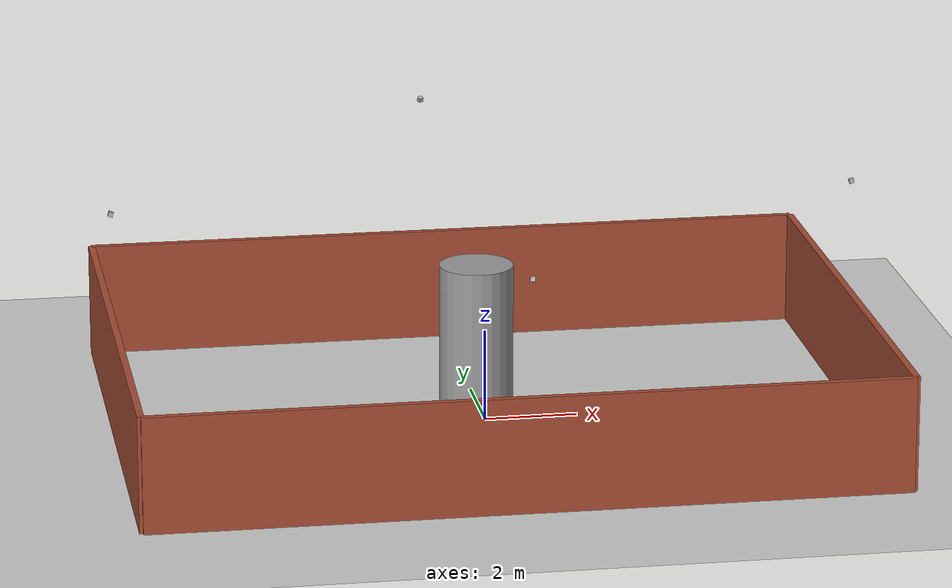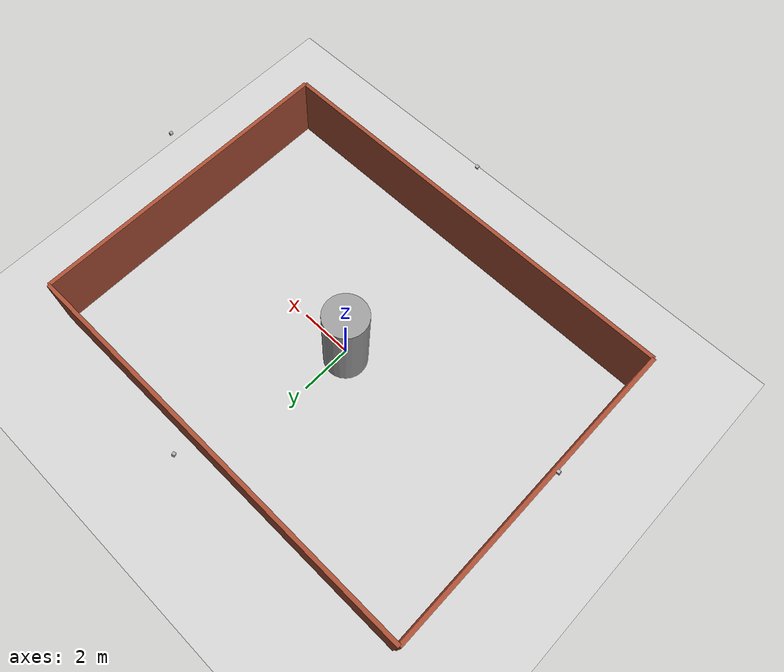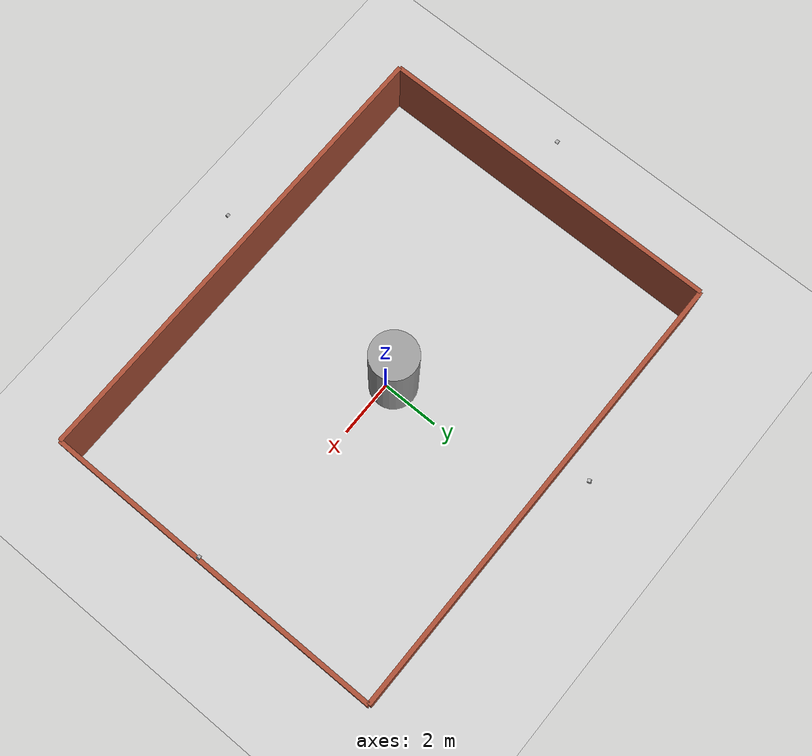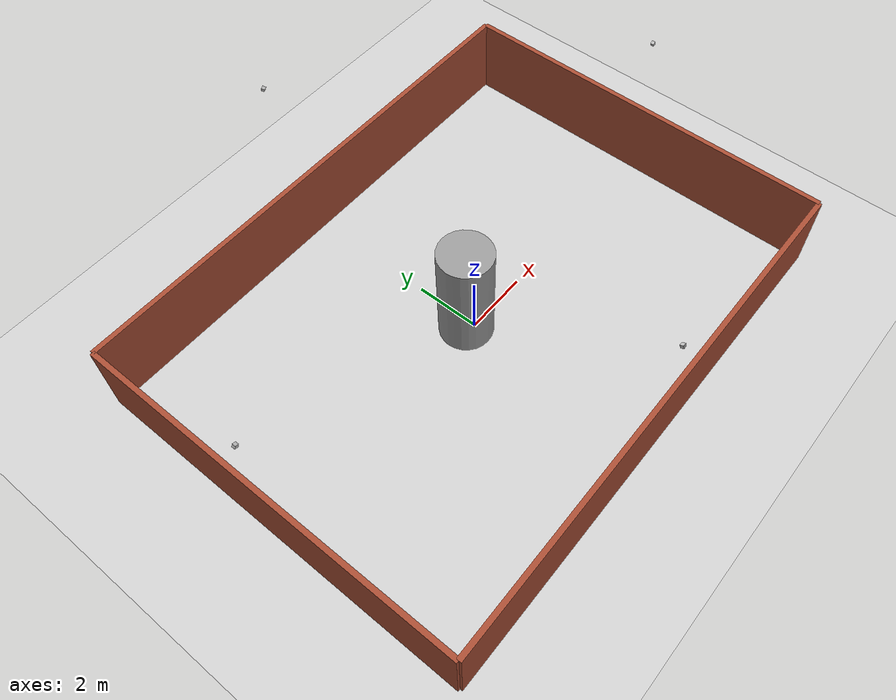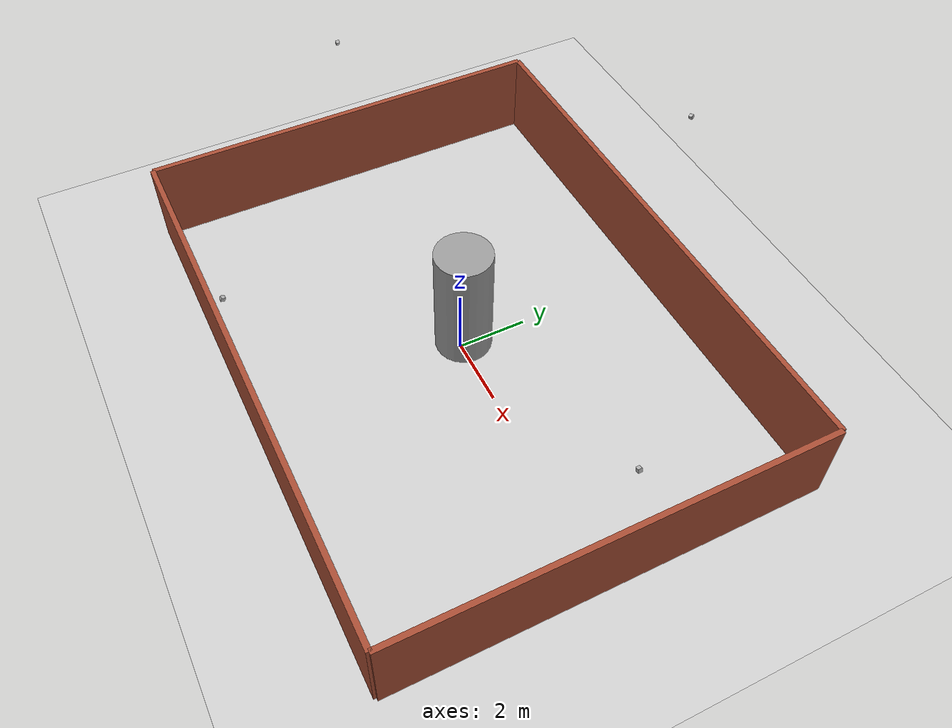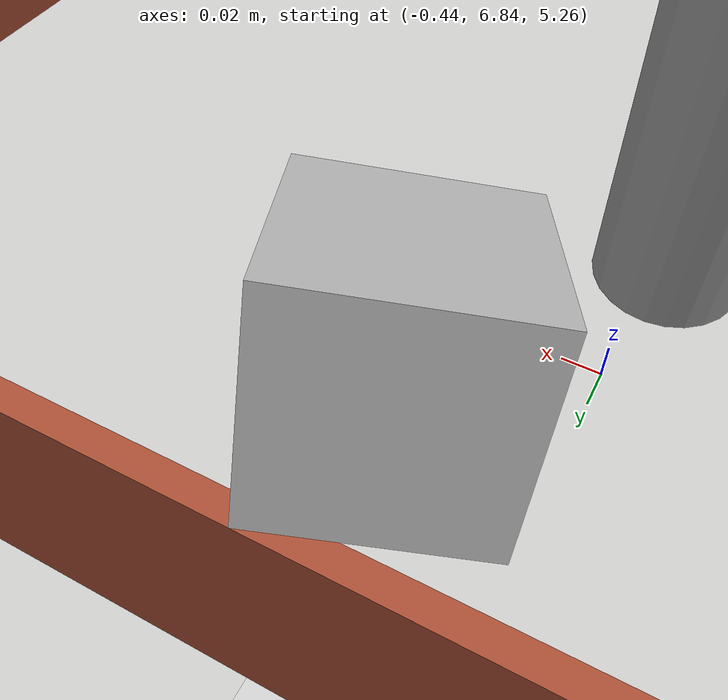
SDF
<sdf version="1.7">
 <world name="default">
  <light name="sun" type="directional">
   <pose>0 0 10 0 -0 0</pose>
   <diffuse>0.8 0.8 0.8 1</diffuse>
   <specular>0.2 0.2 0.2 1</specular>
   <attenuation>
    <range>1000</range>
    <constant>0.9</constant>
    <linear>0.01</linear>
    <quadratic>0.001</quadratic>
   </attenuation>
   <direction>-0.5 0.1 -0.9</direction>
   <spot><inner_angle>0</inner_angle><outer_angle>0</outer_angle><falloff>0</falloff></spot>
  </light>
  <model name="ground_plane">
   <static>1</static>
   <link name="link">
    <collision name="collision">
     <geometry><plane><normal>0 0 1</normal><size>100 100</size></plane></geometry>
     <surface>
      <contact><collide_bitmask>65535</collide_bitmask></contact>
      <friction><ode><mu>100</mu><mu2>50</mu2></ode></friction>
     </surface>
    </collision>
    <visual name="visual">
     <cast_shadows>0</cast_shadows>
     <geometry><plane><normal>0 0 1</normal><size>100 100</size></plane></geometry>
     <material>
      <script><uri>file://media/materials/scripts/gazebo.material</uri><name>Gazebo/Grey</name></script>
     </material>
    </visual>
   </link>
  </model>
  <gravity>0 0 -9.8</gravity>
  <magnetic_field>6e-06 2.3e-05 -4.2e-05</magnetic_field>
  <atmosphere type="adiabatic"/>
  <physics type="ode">
   <max_step_size>0.001</max_step_size>
   <real_time_factor>1</real_time_factor>
   <real_time_update_rate>1000</real_time_update_rate>
  </physics>
  <scene><ambient>0.4 0.4 0.4 1</ambient><background>0.7 0.7 0.7 1</background><shadows>1</shadows></scene>
  <spherical_coordinates>
   <surface_model>EARTH_WGS84</surface_model>
   <latitude_deg>0</latitude_deg>
   <longitude_deg>0</longitude_deg>
   <elevation>0</elevation>
   <heading_deg>0</heading_deg>
  </spherical_coordinates>
  <model name="camera1">
   <static>1</static>
   <pose>8 0 5 0 0.35 -3.14158</pose>
   <link name="link">
    <inertial>
     <mass>0.1</mass>
     <inertia>
      <ixx>0.000166667</ixx>
      <iyy>0.000166667</iyy>
      <izz>0.000166667</izz>
      <ixy>0</ixy>
      <ixz>0</ixz>
      <iyz>0</iyz>
     </inertia>
    </inertial>
    <collision name="collision"><geometry><box><size>0.1 0.1 0.1</size></box></geometry></collision>
    <visual name="visual"><geometry><box><size>0.1 0.1 0.1</size></box></geometry></visual>
    <sensor name="camera1" type="camera">
     <camera>
      <horizontal_fov>1.047</horizontal_fov>
      <image><width>640</width><height>480</height></image>
      <clip><near>0.1</near><far>100</far></clip>
     </camera>
     <always_on>1</always_on>
     <update_rate>30</update_rate>
     <visualize>1</visualize>
     <plugin name="camera_controller" filename="libgazebo_ros_camera.so">
      <alwaysOn>1</alwaysOn>
      <updateRate>0.0</updateRate>
      <cameraName>camera1</cameraName>
      <imageTopicName>image_raw</imageTopicName>
      <cameraInfoTopicName>camera_info</cameraInfoTopicName>
      <frameName>camera_link</frameName>
      <hackBaseline>0.07</hackBaseline>
      <distortionK1>0.0</distortionK1>
      <distortionK2>0.0</distortionK2>
      <distortionK3>0.0</distortionK3>
      <distortionT1>0.0</distortionT1>
      <distortionT2>0.0</distortionT2>
     </plugin>
    </sensor>
   </link>
  </model>
  <model name="unit_cylinder">
   <link name="link">
    <inertial>
     <mass>1</mass>
     <inertia><ixx>0.145833</ixx><ixy>0</ixy><ixz>0</ixz><iyy>0.145833</iyy><iyz>0</iyz><izz>0.125</izz></inertia>
    </inertial>
    <visual name="visual">
     <geometry><cylinder><radius>0.8</radius><length>4.5</length></cylinder></geometry>
     <material>
      <script><name>Gazebo/Grey</name><uri>file://media/materials/scripts/gazebo.material</uri></script>
      <shader type="pixel"><normal_map>__default__</normal_map></shader>
      <ambient>0.3 0.3 0.3 1</ambient>
      <diffuse>0.7 0.7 0.7 1</diffuse>
      <specular>0.01 0.01 0.01 1</specular>
      <emissive>0 0 0 1</emissive>
     </material>
    </visual>
    <collision name="collision">
     <geometry><cylinder><radius>0.8</radius><length>4.5</length></cylinder></geometry>
     <surface>
      <friction>
       <ode><mu>1</mu><mu2>1</mu2><fdir1>0 0 0</fdir1><slip1>0</slip1><slip2>0</slip2></ode>
       <torsional>
        <coefficient>1</coefficient>
        <patch_radius>0</patch_radius>
        <surface_radius>0</surface_radius>
        <use_patch_radius>1</use_patch_radius>
        <ode><slip>0</slip></ode>
       </torsional>
      </friction>
      <bounce><restitution_coefficient>0</restitution_coefficient><threshold>1e+06</threshold></bounce>
      <contact>
       <collide_without_contact>0</collide_without_contact>
       <collide_without_contact_bitmask>1</collide_without_contact_bitmask>
       <collide_bitmask>1</collide_bitmask>
       <ode>
        <soft_cfm>0</soft_cfm>
        <soft_erp>0.2</soft_erp>
        <kp>1e+13</kp>
        <kd>1</kd>
        <max_vel>0.01</max_vel>
        <min_depth>0</min_depth>
       </ode>
       <bullet>
        <split_impulse>1</split_impulse>
        <split_impulse_penetration_threshold>-0.01</split_impulse_penetration_threshold>
        <soft_cfm>0</soft_cfm>
        <soft_erp>0.2</soft_erp>
        <kp>1e+13</kp>
        <kd>1</kd>
       </bullet>
      </contact>
     </surface>
    </collision>
   </link>
   <static>0</static>
   <pose>-0.167422 0.175802 1.19999 0 -0 1.2e-05</pose>
  </model>
  <model name="camera2">
   <static>1</static>
   <link name="link">
    <inertial>
     <mass>0.1</mass>
     <inertia>
      <ixx>0.00016667</ixx>
      <iyy>0.00016667</iyy>
      <izz>0.00016667</izz>
      <ixy>0</ixy>
      <ixz>0</ixz>
      <iyz>0</iyz>
     </inertia>
    </inertial>
    <sensor name="camera" type="camera">
     <camera>
      <horizontal_fov>1.047</horizontal_fov>
      <image><width>640</width><height>480</height></image>
      <clip><near>0.1</near><far>100</far></clip>
     </camera>
     <always_on>1</always_on>
     <update_rate>30</update_rate>
     <visualize>1</visualize>
     <plugin name="camera_controller" filename="libgazebo_ros_camera.so">
      <alwaysOn>1</alwaysOn>
      <updateRate>0.0</updateRate>
      <cameraName>camera2</cameraName>
      <imageTopicName>image_raw</imageTopicName>
      <cameraInfoTopicName>camera_info</cameraInfoTopicName>
      <frameName>camera_link</frameName>
      <hackBaseline>0.07</hackBaseline>
      <distortionK1>0.0</distortionK1>
      <distortionK2>0.0</distortionK2>
      <distortionK3>0.0</distortionK3>
      <distortionT1>0.0</distortionT1>
      <distortionT2>0.0</distortionT2>
     </plugin>
    </sensor>
    <visual name="visual">
     <geometry><box><size>0.1 0.1 0.1</size></box></geometry>
     <material><shader type="pixel"><normal_map>__default__</normal_map></shader></material>
    </visual>
    <collision name="collision">
     <geometry><box><size>0.1 0.1 0.1</size></box></geometry>
     <surface>
      <friction>
       <ode><mu>1</mu><mu2>1</mu2><fdir1>0 0 0</fdir1><slip1>0</slip1><slip2>0</slip2></ode>
       <torsional>
        <coefficient>1</coefficient>
        <patch_radius>0</patch_radius>
        <surface_radius>0</surface_radius>
        <use_patch_radius>1</use_patch_radius>
        <ode><slip>0</slip></ode>
       </torsional>
      </friction>
      <bounce><restitution_coefficient>0</restitution_coefficient><threshold>1e+06</threshold></bounce>
      <contact>
       <collide_without_contact>0</collide_without_contact>
       <collide_without_contact_bitmask>1</collide_without_contact_bitmask>
       <collide_bitmask>1</collide_bitmask>
       <ode>
        <soft_cfm>0</soft_cfm>
        <soft_erp>0.2</soft_erp>
        <kp>1e+13</kp>
        <kd>1</kd>
        <max_vel>0.01</max_vel>
        <min_depth>0</min_depth>
       </ode>
       <bullet>
        <split_impulse>1</split_impulse>
        <split_impulse_penetration_threshold>-0.01</split_impulse_penetration_threshold>
        <soft_cfm>0</soft_cfm>
        <soft_erp>0.2</soft_erp>
        <kp>1e+13</kp>
        <kd>1</kd>
       </bullet>
      </contact>
     </surface>
    </collision>
   </link>
   <static>0</static>
   <pose>0 -6 5 0 0.35 1.57069</pose>
  </model>
  <model name="camera3">
   <static>1</static>
   <link name="link">
    <inertial>
     <mass>0.1</mass>
     <inertia>
      <ixx>0.00016667</ixx>
      <iyy>0.00016667</iyy>
      <izz>0.00016667</izz>
      <ixy>0</ixy>
      <ixz>0</ixz>
      <iyz>0</iyz>
     </inertia>
    </inertial>
    <sensor name="camera" type="camera">
     <camera>
      <horizontal_fov>1.047</horizontal_fov>
      <image><width>640</width><height>480</height></image>
      <clip><near>0.1</near><far>100</far></clip>
     </camera>
     <always_on>1</always_on>
     <update_rate>30</update_rate>
     <visualize>1</visualize>
     <plugin name="camera_controller" filename="libgazebo_ros_camera.so">
      <alwaysOn>1</alwaysOn>
      <updateRate>0.0</updateRate>
      <cameraName>camera3</cameraName>
      <imageTopicName>image_raw</imageTopicName>
      <cameraInfoTopicName>camera_info</cameraInfoTopicName>
      <frameName>camera_link</frameName>
      <hackBaseline>0.07</hackBaseline>
      <distortionK1>0.0</distortionK1>
      <distortionK2>0.0</distortionK2>
      <distortionK3>0.0</distortionK3>
      <distortionT1>0.0</distortionT1>
      <distortionT2>0.0</distortionT2>
     </plugin>
    </sensor>
    <visual name="visual">
     <geometry><box><size>0.1 0.1 0.1</size></box></geometry>
     <material><shader type="pixel"><normal_map>__default__</normal_map></shader></material>
    </visual>
    <collision name="collision">
     <geometry><box><size>0.1 0.1 0.1</size></box></geometry>
     <surface>
      <friction>
       <ode><mu>1</mu><mu2>1</mu2><fdir1>0 0 0</fdir1><slip1>0</slip1><slip2>0</slip2></ode>
       <torsional>
        <coefficient>1</coefficient>
        <patch_radius>0</patch_radius>
        <surface_radius>0</surface_radius>
        <use_patch_radius>1</use_patch_radius>
        <ode><slip>0</slip></ode>
       </torsional>
      </friction>
      <bounce><restitution_coefficient>0</restitution_coefficient><threshold>1e+06</threshold></bounce>
      <contact>
       <collide_without_contact>0</collide_without_contact>
       <collide_without_contact_bitmask>1</collide_without_contact_bitmask>
       <collide_bitmask>1</collide_bitmask>
       <ode>
        <soft_cfm>0</soft_cfm>
        <soft_erp>0.2</soft_erp>
        <kp>1e+13</kp>
        <kd>1</kd>
        <max_vel>0.01</max_vel>
        <min_depth>0</min_depth>
       </ode>
       <bullet>
        <split_impulse>1</split_impulse>
        <split_impulse_penetration_threshold>-0.01</split_impulse_penetration_threshold>
        <soft_cfm>0</soft_cfm>
        <soft_erp>0.2</soft_erp>
        <kp>1e+13</kp>
        <kd>1</kd>
       </bullet>
      </contact>
     </surface>
    </collision>
   </link>
   <static>0</static>
   <pose>-8 0 5 0 0.35 0</pose>
  </model>
  <model name="room2">
   <link name="Wall_1">
    <pose>8 0 0 0 0 -1.5708</pose>
    <inertial>
     <mass>1</mass>
     <inertia><ixx>1</ixx><ixy>0</ixy><ixz>0</ixz><iyy>1</iyy><iyz>0</iyz><izz>1</izz></inertia>
    </inertial>
    <visual name="Wall_1_Visual">
     <pose>0 0 1.25 0 -0 0</pose>
     <geometry><box><size>12 0.15 2.5</size></box></geometry>
     <material>
      <script><uri>file://media/materials/scripts/gazebo.material</uri><name>Gazebo/Bricks</name></script>
      <ambient>0.204 0.396 0.643 1</ambient>
      <shader type="pixel"><normal_map>__default__</normal_map></shader>
      <diffuse>0.204 0.396 0.643 1</diffuse>
      <specular>0.204 0.396 0.643 1</specular>
      <emissive>0.204 0.396 0.643 1</emissive>
     </material>
     <meta><layer>0</layer></meta>
    </visual>
    <collision name="Wall_1_Collision">
     <pose>0 0 1.25 0 -0 0</pose>
     <geometry><box><size>12 0.15 2.5</size></box></geometry>
     <surface>
      <friction>
       <ode><mu>1</mu><mu2>1</mu2><fdir1>0 0 0</fdir1><slip1>0</slip1><slip2>0</slip2></ode>
       <torsional>
        <coefficient>1</coefficient>
        <patch_radius>0</patch_radius>
        <surface_radius>0</surface_radius>
        <use_patch_radius>1</use_patch_radius>
        <ode><slip>0</slip></ode>
       </torsional>
      </friction>
      <bounce><restitution_coefficient>0</restitution_coefficient><threshold>1e+06</threshold></bounce>
      <contact>
       <collide_without_contact>0</collide_without_contact>
       <collide_without_contact_bitmask>1</collide_without_contact_bitmask>
       <collide_bitmask>1</collide_bitmask>
       <ode>
        <soft_cfm>0</soft_cfm>
        <soft_erp>0.2</soft_erp>
        <kp>1e+13</kp>
        <kd>1</kd>
        <max_vel>0.01</max_vel>
        <min_depth>0</min_depth>
       </ode>
       <bullet>
        <split_impulse>1</split_impulse>
        <split_impulse_penetration_threshold>-0.01</split_impulse_penetration_threshold>
        <soft_cfm>0</soft_cfm>
        <soft_erp>0.2</soft_erp>
        <kp>1e+13</kp>
        <kd>1</kd>
       </bullet>
      </contact>
     </surface>
    </collision>
   </link>
   <link name="Wall_2">
    <pose>0 -6 0 0 -0 3.14159</pose>
    <inertial>
     <mass>1</mass>
     <inertia><ixx>1</ixx><ixy>0</ixy><ixz>0</ixz><iyy>1</iyy><iyz>0</iyz><izz>1</izz></inertia>
    </inertial>
    <visual name="Wall_2_Visual">
     <pose>0 0 1.25 0 -0 0</pose>
     <geometry><box><size>16 0.15 2.5</size></box></geometry>
     <material>
      <script><uri>file://media/materials/scripts/gazebo.material</uri><name>Gazebo/Bricks</name></script>
      <ambient>0.459 0.314 0.482 1</ambient>
      <shader type="pixel"><normal_map>__default__</normal_map></shader>
      <diffuse>0.459 0.314 0.482 1</diffuse>
      <specular>0.459 0.314 0.482 1</specular>
      <emissive>0.459 0.314 0.482 1</emissive>
     </material>
     <meta><layer>0</layer></meta>
    </visual>
    <collision name="Wall_2_Collision">
     <pose>0 0 1.25 0 -0 0</pose>
     <geometry><box><size>16 0.15 2.5</size></box></geometry>
     <surface>
      <friction>
       <ode><mu>1</mu><mu2>1</mu2><fdir1>0 0 0</fdir1><slip1>0</slip1><slip2>0</slip2></ode>
       <torsional>
        <coefficient>1</coefficient>
        <patch_radius>0</patch_radius>
        <surface_radius>0</surface_radius>
        <use_patch_radius>1</use_patch_radius>
        <ode><slip>0</slip></ode>
       </torsional>
      </friction>
      <bounce><restitution_coefficient>0</restitution_coefficient><threshold>1e+06</threshold></bounce>
      <contact>
       <collide_without_contact>0</collide_without_contact>
       <collide_without_contact_bitmask>1</collide_without_contact_bitmask>
       <collide_bitmask>1</collide_bitmask>
       <ode>
        <soft_cfm>0</soft_cfm>
        <soft_erp>0.2</soft_erp>
        <kp>1e+13</kp>
        <kd>1</kd>
        <max_vel>0.01</max_vel>
        <min_depth>0</min_depth>
       </ode>
       <bullet>
        <split_impulse>1</split_impulse>
        <split_impulse_penetration_threshold>-0.01</split_impulse_penetration_threshold>
        <soft_cfm>0</soft_cfm>
        <soft_erp>0.2</soft_erp>
        <kp>1e+13</kp>
        <kd>1</kd>
       </bullet>
      </contact>
     </surface>
    </collision>
   </link>
   <link name="Wall_2_clone">
    <pose>0 6 0 0 -0 3.14159</pose>
    <inertial>
     <mass>1</mass>
     <inertia><ixx>1</ixx><ixy>0</ixy><ixz>0</ixz><iyy>1</iyy><iyz>0</iyz><izz>1</izz></inertia>
    </inertial>
    <visual name="Wall_2_Visual">
     <pose>0 0 1.25 0 -0 0</pose>
     <geometry><box><size>16 0.15 2.5</size></box></geometry>
     <material>
      <script><uri>file://media/materials/scripts/gazebo.material</uri><name>Gazebo/Bricks</name></script>
      <ambient>0.929 0.831 0 1</ambient>
      <shader type="pixel"><normal_map>__default__</normal_map></shader>
      <diffuse>0.929 0.831 0 1</diffuse>
      <specular>0.929 0.831 0 1</specular>
      <emissive>0.929 0.831 0 1</emissive>
     </material>
     <meta><layer>0</layer></meta>
    </visual>
    <collision name="Wall_2_Collision">
     <pose>0 0 1.25 0 -0 0</pose>
     <geometry><box><size>16 0.15 2.5</size></box></geometry>
     <surface>
      <friction>
       <ode><mu>1</mu><mu2>1</mu2><fdir1>0 0 0</fdir1><slip1>0</slip1><slip2>0</slip2></ode>
       <torsional>
        <coefficient>1</coefficient>
        <patch_radius>0</patch_radius>
        <surface_radius>0</surface_radius>
        <use_patch_radius>1</use_patch_radius>
        <ode><slip>0</slip></ode>
       </torsional>
      </friction>
      <bounce><restitution_coefficient>0</restitution_coefficient><threshold>1e+06</threshold></bounce>
      <contact>
       <collide_without_contact>0</collide_without_contact>
       <collide_without_contact_bitmask>1</collide_without_contact_bitmask>
       <collide_bitmask>1</collide_bitmask>
       <ode>
        <soft_cfm>0</soft_cfm>
        <soft_erp>0.2</soft_erp>
        <kp>1e+13</kp>
        <kd>1</kd>
        <max_vel>0.01</max_vel>
        <min_depth>0</min_depth>
       </ode>
       <bullet>
        <split_impulse>1</split_impulse>
        <split_impulse_penetration_threshold>-0.01</split_impulse_penetration_threshold>
        <soft_cfm>0</soft_cfm>
        <soft_erp>0.2</soft_erp>
        <kp>1e+13</kp>
        <kd>1</kd>
       </bullet>
      </contact>
     </surface>
    </collision>
   </link>
   <link name="Wall_3">
    <pose>-8 0 0 0 -0 1.5708</pose>
    <inertial>
     <mass>1</mass>
     <inertia><ixx>1</ixx><ixy>0</ixy><ixz>0</ixz><iyy>1</iyy><iyz>0</iyz><izz>1</izz></inertia>
    </inertial>
    <visual name="Wall_3_Visual">
     <pose>0 0 1.25 0 -0 0</pose>
     <geometry><box><size>12 0.15 2.5</size></box></geometry>
     <material>
      <script><uri>file://media/materials/scripts/gazebo.material</uri><name>Gazebo/Bricks</name></script>
      <ambient>0.451 0.824 0.086 1</ambient>
      <shader type="pixel"><normal_map>__default__</normal_map></shader>
      <diffuse>0.451 0.824 0.086 1</diffuse>
      <specular>0.451 0.824 0.086 1</specular>
      <emissive>0.451 0.824 0.086 1</emissive>
     </material>
     <meta><layer>0</layer></meta>
    </visual>
    <collision name="Wall_3_Collision">
     <pose>0 0 1.25 0 -0 0</pose>
     <geometry><box><size>12 0.15 2.5</size></box></geometry>
     <surface>
      <friction>
       <ode><mu>1</mu><mu2>1</mu2><fdir1>0 0 0</fdir1><slip1>0</slip1><slip2>0</slip2></ode>
       <torsional>
        <coefficient>1</coefficient>
        <patch_radius>0</patch_radius>
        <surface_radius>0</surface_radius>
        <use_patch_radius>1</use_patch_radius>
        <ode><slip>0</slip></ode>
       </torsional>
      </friction>
      <bounce><restitution_coefficient>0</restitution_coefficient><threshold>1e+06</threshold></bounce>
      <contact>
       <collide_without_contact>0</collide_without_contact>
       <collide_without_contact_bitmask>1</collide_without_contact_bitmask>
       <collide_bitmask>1</collide_bitmask>
       <ode>
        <soft_cfm>0</soft_cfm>
        <soft_erp>0.2</soft_erp>
        <kp>1e+13</kp>
        <kd>1</kd>
        <max_vel>0.01</max_vel>
        <min_depth>0</min_depth>
       </ode>
       <bullet>
        <split_impulse>1</split_impulse>
        <split_impulse_penetration_threshold>-0.01</split_impulse_penetration_threshold>
        <soft_cfm>0</soft_cfm>
        <soft_erp>0.2</soft_erp>
        <kp>1e+13</kp>
        <kd>1</kd>
       </bullet>
      </contact>
     </surface>
    </collision>
   </link>
   <static>1</static>
   <pose>0.0305 0.001215 0 0 -0 0</pose>
  </model>
  <model name="camera4_ed">
   <link name="link">
    <inertial>
     <mass>0.1</mass>
     <inertia>
      <ixx>0.00016667</ixx>
      <iyy>0.00016667</iyy>
      <izz>0.00016667</izz>
      <ixy>0</ixy>
      <ixz>0</ixz>
      <iyz>0</iyz>
     </inertia>
    </inertial>
    <sensor name="camera" type="camera">
     <camera>
      <horizontal_fov>1.047</horizontal_fov>
      <image><width>640</width><height>480</height></image>
      <clip><near>0.1</near><far>100</far></clip>
     </camera>
     <always_on>1</always_on>
     <update_rate>30</update_rate>
     <visualize>1</visualize>
     <plugin name="camera_controller" filename="libgazebo_ros_camera.so">
      <alwaysOn>1</alwaysOn>
      <updateRate>0.0</updateRate>
      <cameraName>camera4</cameraName>
      <imageTopicName>image_raw</imageTopicName>
      <cameraInfoTopicName>camera_info</cameraInfoTopicName>
      <frameName>camera_link</frameName>
      <hackBaseline>0.07</hackBaseline>
      <distortionK1>0.0</distortionK1>
      <distortionK2>0.0</distortionK2>
      <distortionK3>0.0</distortionK3>
      <distortionT1>0.0</distortionT1>
      <distortionT2>0.0</distortionT2>
     </plugin>
    </sensor>
    <pose>-0.987276 -0.374847 -0 0 -0 0.423253</pose>
    <visual name="visual">
     <geometry><box><size>0.1 0.1 0.1</size></box></geometry>
     <material><shader type="pixel"><normal_map>__default__</normal_map></shader></material>
    </visual>
    <collision name="collision">
     <geometry><box><size>0.1 0.1 0.1</size></box></geometry>
     <surface>
      <friction>
       <ode><mu>1</mu><mu2>1</mu2><fdir1>0 0 0</fdir1><slip1>0</slip1><slip2>0</slip2></ode>
       <torsional>
        <coefficient>1</coefficient>
        <patch_radius>0</patch_radius>
        <surface_radius>0</surface_radius>
        <use_patch_radius>1</use_patch_radius>
        <ode><slip>0</slip></ode>
       </torsional>
      </friction>
      <bounce><restitution_coefficient>0</restitution_coefficient><threshold>1e+06</threshold></bounce>
      <contact>
       <collide_without_contact>0</collide_without_contact>
       <collide_without_contact_bitmask>1</collide_without_contact_bitmask>
       <collide_bitmask>1</collide_bitmask>
       <ode>
        <soft_cfm>0</soft_cfm>
        <soft_erp>0.2</soft_erp>
        <kp>1e+13</kp>
        <kd>1</kd>
        <max_vel>0.01</max_vel>
        <min_depth>0</min_depth>
       </ode>
       <bullet>
        <split_impulse>1</split_impulse>
        <split_impulse_penetration_threshold>-0.01</split_impulse_penetration_threshold>
        <soft_cfm>0</soft_cfm>
        <soft_erp>0.2</soft_erp>
        <kp>1e+13</kp>
        <kd>1</kd>
       </bullet>
      </contact>
     </surface>
    </collision>
   </link>
   <static>1</static>
   <pose>0 6 5 0 0.35 -1.5707</pose>
  </model>
 </world>
</sdf>
